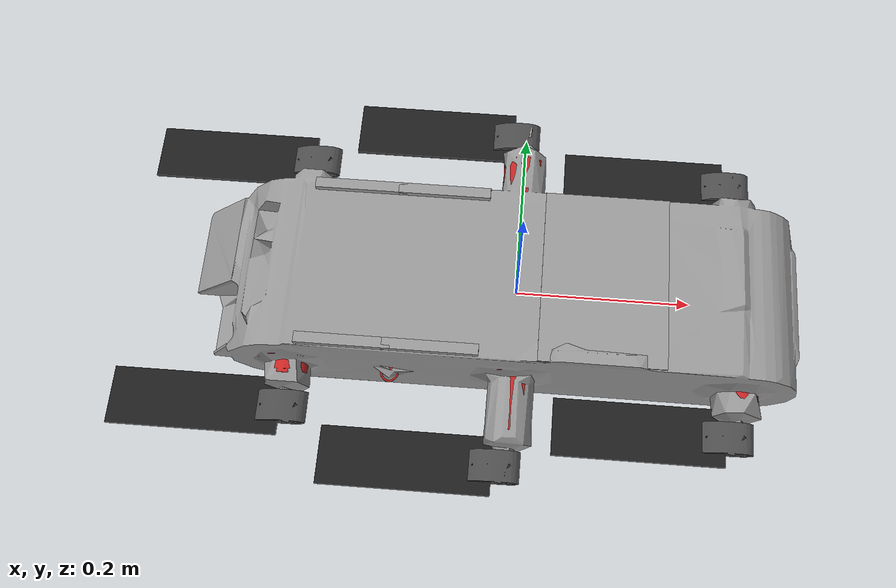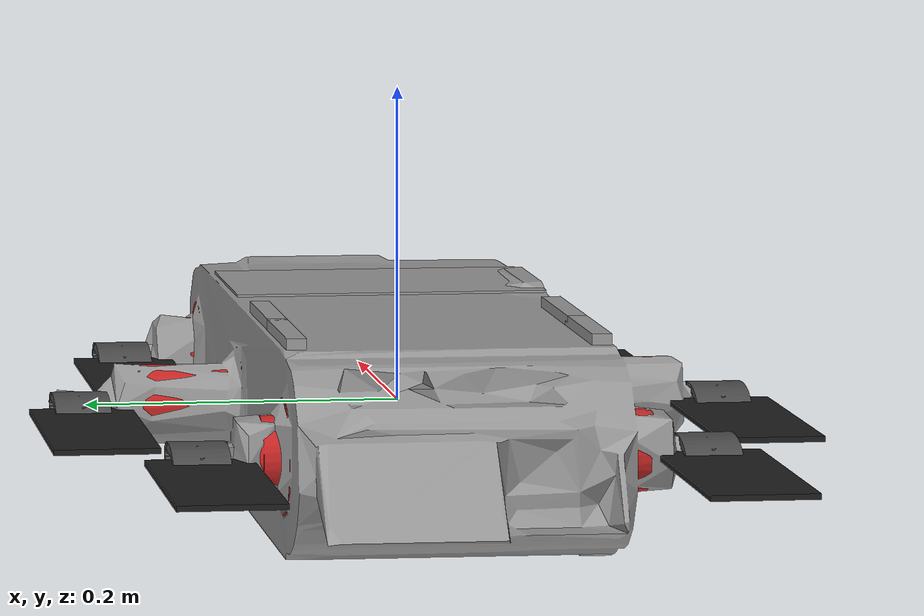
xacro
<?xml version="1.0"?>

<robot xmlns:xacro="http://www.ros.org/wiki/xacro" name="aqua">
    <xacro:include filename="$(find aqua_description)/urdf/materials.urdf.xacro" />

    <!-- ========= BEGIN CONSTANT DEFINITIONS =========== -->

    <xacro:property name="M_PI" value="3.1415926535897931" />

    <xacro:property name="shell_size_x" value="0.64" />
    <xacro:property name="shell_size_y" value="0.21" />
    <xacro:property name="shell_size_z" value="0.125" />

    <xacro:property name="leg_size_x" value="0.192" />
    <xacro:property name="leg_size_y" value="0.065" />
    <xacro:property name="leg_size_z" value="0.0035" />

    <xacro:property name="hip_radius" value="0.029" />
    <xacro:property name="hip_length" value="0.032" />
    <xacro:property name="mid_hip_length" value="0.082"/>

    <xacro:property name="shoulder_size_x" value="0.06" />
    <xacro:property name="shoulder_size_y" value="0.035" />
    <xacro:property name="shoulder_size_z" value="0.02" />

    <xacro:property name="shell_mass" value="14.405"/> <!-- total is 16.4 -->
    <xacro:property name="leg_mass" value="0.120"/>
    <xacro:property name="shoulder_mass" value="0.045"/>
    <xacro:property name="zinc_density" value="7000.0"/> <!-- from approximate measurements from physical zinc weights used on aqua-->
    <xacro:property name="steel_density" value="8000.0"/> <!-- approximate measurements from physical ballast plates -->

    <!-- ========= BEGIN MACRO DEFINITIONS =========== -->
    <!-- LEGS -->
    <xacro:macro name="leg" params="name">
        <link name="${name}_leg">
            <visual>
                <origin xyz="0 0 0" rpy="0 0 0" />
                <geometry name="leg_visual_geom">
                    <box size="${leg_size_x} ${leg_size_y} ${leg_size_z}" />
                </geometry>
            </visual>
            <collision>
                <origin xyz="0 0 0" rpy="0 0 0" />
                <geometry>
                    <!--box size="${leg_size_x} ${leg_size_y} ${leg_size_z}" /-->
                    <mesh filename="package://aqua_description/meshes/unit_box.stl" scale="${leg_size_x} ${leg_size_y} ${leg_size_z}"/>
                </geometry>
            </collision>
            <inertial>
                <origin xyz="0 0 0" rpy="0 0 0" />
                <mass value="${leg_mass}"/>
                <inertia ixx="${leg_mass*(leg_size_y*leg_size_y + leg_size_z*leg_size_z)/12}" ixy="0.00" ixz="0.00" iyy="${leg_mass*(leg_size_x*leg_size_x + leg_size_z*leg_size_z)/12}" iyz="0.00" izz="${leg_mass*(leg_size_x*leg_size_x + leg_size_y*leg_size_y)/12}"/>
            </inertial>
        </link>
    </xacro:macro>

    <!-- SHOULDERS -->
    <xacro:macro name="shoulder" params="name">
        <link name="${name}_shoulder">
            <visual>
                <origin xyz="0 0 0" rpy="0 0 0" />
                <geometry name="shoulder_visual_geom">
                    <mesh filename="package://aqua_description/meshes/shoulder.stl" scale="1.0 1.0 1.0" />
                </geometry>
            </visual>
            <collision>
                <origin xyz="0 0 0" rpy="0 0 0" />
                <geometry>
                    <!--box size="${shoulder_size_x} ${shoulder_size_y} ${shoulder_size_z}" /-->
                    <!--mesh filename="package://aqua_description/meshes/leg_joint.STL" scale="1.0 1.0 1.0" /-->
                    <mesh filename="package://aqua_description/meshes/shoulder_collision.stl" scale="1.0 1.0 1.0" />
                </geometry>
            </collision>
            <inertial>
                <origin xyz="0 0 0" rpy="0 0 0" />
                <mass value="${shoulder_mass}"/>
                <inertia ixx="${shoulder_mass*(shoulder_size_y*shoulder_size_y + shoulder_size_z*shoulder_size_z)/12}" ixy="0.00" ixz="0.00" iyy="${shoulder_mass*(shoulder_size_x*shoulder_size_x + shoulder_size_z*shoulder_size_z)/12}" iyz="0.00" izz="${shoulder_mass*(shoulder_size_x*shoulder_size_x + shoulder_size_y*shoulder_size_y)/12}"/>
            </inertial>
        </link>
    </xacro:macro>

    <!-- BALLASTING -->
    <xacro:macro name="rectangular_ballast_weight" params="name xyz rpy density length width height">
        <link name="${name}_ballast">
            <visual>
                <origin xyz="0 0 0" rpy="0 0 0" />
                <geometry>
                    <box size="${length} ${width} ${height}" />
                </geometry>
            </visual>
            <collision>
                <origin xyz="0 0 0" rpy="0 0 0" />
                <geometry>
                    <box size="${length} ${width} ${height}"/>
                </geometry>
            </collision>
            <inertial>
                <origin xyz="0 0 0" rpy="0 0 0" />
                <mass value="${density*length*width*height}"/>
                <inertia ixx="${(density*length*width*height)*(width*width + height*height)/12}" ixy="0.00" ixz="0.00" iyy="${(density*length*width*height)*(length*length + height*height)/12}" iyz="0.00" izz="${(density*length*width*height)*(length*length + width*width)/12}"/>
            </inertial>
        </link>
        <joint name="${name}_ballast_joint" type="revolute">
            <limit upper="0.0" lower="0.0" effort="0.0" velocity="0.0"/>
            <origin xyz="${xyz}" rpy="${rpy}" />
            <axis xyz="0 1 0" />
            <parent link="aqua_base"/>
            <child link="${name}_ballast"/>
        </joint>
        <gazebo reference="${name}_ballast">
            <selfCollide>false</selfCollide>
            <material>Gazebo/Grey</material>
        </gazebo>
    </xacro:macro>

    <!-- SHOULDER JOINTS -->
    <xacro:macro name="shoulder_joint" params="name xyz rpy axis">
        <joint name="${name}_shoulder_joint" type="continuous">
            <origin xyz="${xyz}" rpy="${rpy}" />
            <dynamics damping="0.1" friction="0.1"/>
            <axis xyz="${axis}" />
            <parent link="aqua_shell"/>
            <child link="${name}_shoulder"/>
        </joint>
    </xacro:macro>

    <!-- LEG JOINTS -->
    <xacro:macro name="leg_joint" params="name">
        <joint name="${name}_leg_joint" type="revolute">
            <limit upper="0.0" lower="0.0" effort="0.0" velocity="0.0"/>
            <dynamics damping="1.0" friction="1.0"/>
            <origin xyz="-${0.008 + leg_size_x/2} 0 -${leg_size_z/2}" rpy="0 0 0" />
            <axis xyz="0 1 0" />
            <parent link="${name}_shoulder"/>
            <child link="${name}_leg"/>
        </joint>
    </xacro:macro>

  <!-- GAZEBO MACROS -->
  <xacro:macro name="leg_gazebo" params="name">
      <gazebo reference="${name}_leg">
          <selfCollide>false</selfCollide>
          <material>Gazebo/Black</material>
      </gazebo>
      <gazebo reference="${name}_leg_joint">
          <implicitSpringDamper>true</implicitSpringDamper>
      </gazebo>
  </xacro:macro>

  <xacro:macro name="shoulder_gazebo" params="name">
      <gazebo reference="${name}_shoulder">
          <selfCollide>false</selfCollide>
          <material>Gazebo/DarkGrey</material>
      </gazebo>
  </xacro:macro>

  <!-- ========= BEGIN LINK DEFINITIONS =========== -->

  <link name="aqua_base">
  </link>

  <!-- The parent link is the robots shell, silver and red in the same position -->
  <link name="aqua_shell">
      <visual>
          <origin xyz="0 0 0" rpy="0 0 0" />
          <geometry>
              <mesh filename="package://aqua_description/meshes/aqua_silver_m_low_res.STL" scale="1.0 1.0 1.0" />
          </geometry>
      </visual>
      <collision>
          <geometry>
              <!-- the scale is corrected by a little bit to account for the over estimation of the volume in the model (it has some ballasting plates) -->
              <mesh filename="package://aqua_description/meshes/aqua_body_collision_1000_2.stl" scale="1.0 1.0 0.975" />
          </geometry>
      </collision>
      <inertial>
          <!--- this center of mass was obtained from meshlab, so probably slighltly wrong -->
          <origin xyz="-0.0082217 -0.0011512 -0.0052371" rpy="0 0 0" />
          <!-- the mass was measured on ramius (aqua4) with the batteries inside -->
          <mass value="${shell_mass}"/>
          <inertia ixx="${0.06762729295778704963}" ixy="${-0.00743579109825349537}" ixz="${-0.0017041777467544214}" iyy="${0.27789624395031214954}" iyz="${-0.00069697735739706918}" izz="${0.31521251562952778968}"/>
      </inertial>
  </link>

  <link name="aqua_shell_viz">
      <visual>
          <origin xyz="0 0 0" rpy="0 0 0" />
          <geometry>
              <mesh filename="package://aqua_description/meshes/aqua_red_m_low_res.STL" scale="1.0 1.0 1.0" />
          </geometry>
      </visual>
      <inertial>
          <origin xyz="-0.0082217 -0.0011512 -0.0052371" rpy="0 0 0" />
          <mass value="1e-10"/>
          <inertia ixx="1e-10" ixy="0" ixz="0" iyy="1e-10" iyz="0" izz="1e-10"/>
      </inertial>
  </link>

  <!-- CAMERA LINKS -->

  <link name="camera_front_left">
      <visual>
          <origin xyz="0 0 0" rpy="0 0 0" />
          <geometry name="camera_front_left_visual_geom">
              <box size="0.0001 0.00025 0.00025" />
          </geometry>
      </visual>
  </link>

  <link name="camera_front_right">
      <visual>
          <origin xyz="0 0 0" rpy="0 0 0" />
          <geometry name="camera_front_right_visual_geom">
              <box size="0.0001 0.00025 0.00025" />
          </geometry>
      </visual>
  </link>

  <link name="camera_front_right_down">
      <visual>
          <origin xyz="0 0 0" rpy="0 0 0" />
          <geometry name="camera_front_right_down_visual_geom">
              <box size="0.0001 0.00025 0.00025" />
          </geometry>
      </visual>
  </link>
  <!-- BALLASTING LINKS -->

  <xacro:rectangular_ballast_weight name="ballast_plate_1"
                                    density="${steel_density}"
                                    xyz="${0.15*shell_size_x} ${0} ${(shell_size_z/2.0+0.00275)}"
                                    rpy="0 0 0"
                                    length="0.14"
                                    width="0.2"
                                    height="0.0015"/>

  <xacro:rectangular_ballast_weight name="ballast_plate_2"
                                    density="${steel_density}"
                                    xyz="${0.16*shell_size_x} ${0} ${-(shell_size_z/2.0+0.00275)}"
                                    rpy="0 0 0"
                                    length="0.25"
                                    width="0.2"
                                    height="0.0015"/>

  <xacro:rectangular_ballast_weight name="ballast_weight_1"
                                    density="${zinc_density}"
                                    xyz="${-0.3*shell_size_x} ${-0.5*shell_size_y+0.015} ${-(shell_size_z/2.0+0.002)}"
                                    rpy="0 0 0"
                                    length="0.09"
                                    width="0.02"
                                    height="0.004"/>

  <xacro:rectangular_ballast_weight name="ballast_weight_2"
                                    density="${zinc_density}"
                                    xyz="${-0.29*shell_size_x} ${-0.5*shell_size_y+0.012} ${(shell_size_z/2.0+0.00325)}"
                                    rpy="0 0 0"
                                    length="0.105"
                                    width="0.01221"
                                    height="0.007"/>

  <xacro:rectangular_ballast_weight name="ballast_weight_3"
                                    density="${zinc_density}"
                                    xyz="${-0.09} ${-0.5*shell_size_y+0.012} ${(shell_size_z/2.0+0.00325)}"
                                    rpy="0 0 0"
                                    length="0.105"
                                    width="0.01221"
                                    height="0.007"/>

  <xacro:rectangular_ballast_weight name="ballast_weight_4"
                                    density="${zinc_density}"
                                    xyz="${-0.09} ${0.5*shell_size_y-0.012} ${(shell_size_z/2.0+0.00325)}"
                                    rpy="0 0 0"
                                    length="0.105"
                                    width="0.01221"
                                    height="0.007"/>

  <xacro:rectangular_ballast_weight name="ballast_weight_5"
                                    density="${zinc_density}"
                                    xyz="${-0.29*shell_size_x} ${0.5*shell_size_y-0.012} ${(shell_size_z/2.0+0.00325)}"
                                    rpy="0 0 0"
                                    length="0.105"
                                    width="0.01221"
                                    height="0.007"/>

  <xacro:rectangular_ballast_weight name="ballast_weight_6"
                                    density="${zinc_density}"
                                    xyz="${-0.065} ${0.01} ${-(shell_size_z/2.0+0.006)}"
                                    rpy="0 0 0"
                                    length="0.015"
                                    width="0.15"
                                    height="0.012"/>

  <!-- DEPTH SENSOR LINK -->
  <link name="depth_sensor">
    <visual>
        <origin xyz="0 0 0" rpy="0 0 0" />
        <geometry name="depth_sensor_visual_geom">
            <box size="0.001 0.001 0.001" />
        </geometry>
    </visual>
    <inertial>
        <origin xyz="0 0 0" rpy="0 0 0" />
        <!-- these are dummy values, otherwise gazebo will ignore this link -->
        <mass value="1e-4"/>
        <inertia ixx="1.0e-4" ixy="0.00" ixz="0.00" iyy="1.0e-4" iyz="0.00" izz="1.0e-4"/>
    </inertial>
  </link>

  <!-- FRONT LEFT LINKS -->

  <xacro:leg name="left_front"/>

  <xacro:shoulder name="left_front"/>

  <!-- MID LEFT LINKS -->

  <xacro:leg name="left_mid"/>

  <xacro:shoulder name="left_mid"/>

  <!-- REAR LEFT LINKS -->

  <xacro:leg name="left_rear"/>

  <xacro:shoulder name="left_rear"/>

  <!-- FRONT RIGHT LINKS -->

  <xacro:leg name="right_front"/>

  <xacro:shoulder name="right_front"/>

  <!-- MID RIGHT LINKS -->

  <xacro:leg name="right_mid"/>

  <xacro:shoulder name="right_mid"/>

  <!-- REAR RIGHT LINKS -->

  <xacro:leg name="right_rear"/>

  <xacro:shoulder name="right_rear"/>

  <!-- ========= BEGIN JOINT DEFINITIONS =========== -->

  <!-- BASE JOINT -->

  <joint name="base_joint_shell" type="fixed">
      <origin xyz="0 0 0" rpy="0 0 0" />
      <axis xyz="0 1 0" />
      <parent link="aqua_base"/>
      <child link="aqua_shell"/>
  </joint>

  <joint name="shell_viz_joint" type="fixed">
      <origin xyz="0 0 0" rpy="0 0 0" />
      <axis xyz="0 1 0" />
      <parent link="aqua_shell"/>
      <child link="aqua_shell_viz"/>
  </joint>

  <!-- CAMERA JOINTS -->

  <joint name="front_left_camera_joint" type="fixed">
      <origin xyz="${shell_size_x/2} ${shell_size_y/3} 0" rpy="${M_PI/2} ${M_PI} ${M_PI/2}" />
      <axis xyz="0 1 0" />
      <parent link="aqua_shell"/>
      <child link="camera_front_left"/>
  </joint>

  <joint name="front_right_camera_joint" type="fixed">
      <origin xyz="${3*shell_size_x/5} -${shell_size_y/3} 0" rpy="${M_PI/2} ${M_PI} ${M_PI/2}" />
      <axis xyz="0 1 0" />
      <parent link="aqua_shell"/>
      <child link="camera_front_right"/>
  </joint>

  <joint name="front_right_camera_down_joint" type="fixed">
      <origin xyz="0 0 0" rpy="0 0 ${M_PI/2}" />
      <axis xyz="0 1 0" />
      <parent link="camera_front_right"/>
      <child link="camera_front_right_down"/>
  </joint>

  <!-- FRONT LEFT JOINTS -->
  <xacro:leg_joint name="left_front" />

  <xacro:shoulder_joint name="left_front" xyz="${shell_size_x/2 - 0.10*shell_size_x - 0.007} ${shell_size_y/2 + hip_length + shoulder_size_y/2} 0" rpy="0 0 0" axis="0 -1 0"/>

  <!-- MID LEFT JOINTS -->
  <xacro:leg_joint name="left_mid" />

  <xacro:shoulder_joint name="left_mid" xyz="-0.007 ${shell_size_y/2 + mid_hip_length + shoulder_size_y/2} 0" rpy="0 0 0" axis="0 -1 0" />

  <!-- REAR LEFT JOINTS -->
  <xacro:leg_joint name="left_rear"/>

  <xacro:shoulder_joint name="left_rear" xyz="-${shell_size_x/2 - 0.10*shell_size_x - 0.007} ${shell_size_y/2 + hip_length + shoulder_size_y/2} 0" rpy="0 0 0" axis="0 -1 0" />

  <!-- FRONT RIGHT JOINTS -->
  <xacro:leg_joint name="right_front"/>

  <xacro:shoulder_joint name="right_front" xyz="${shell_size_x/2 - 0.10*shell_size_x - 0.007} -${shell_size_y/2 + hip_length + shoulder_size_y/2} 0" rpy="0 0 0" axis="0 -1 0" />

  <!-- MID RIGHT JOINTS -->
  <xacro:leg_joint name="right_mid"/>

  <xacro:shoulder_joint name="right_mid" xyz="-0.007 -${shell_size_y/2 + mid_hip_length + shoulder_size_y/2} 0" rpy="0 0 0" axis="0 -1 0"  />

  <!-- REAR RIGHT JOINTS -->
  <xacro:leg_joint name="right_rear"/>

  <xacro:shoulder_joint name="right_rear" xyz="-${shell_size_x/2 - 0.10*shell_size_x - 0.007} -${shell_size_y/2 + hip_length + shoulder_size_y/2} 0" rpy="0 0 0" axis="0 -1 0"  />

  <!-- DEPTH SENSOR JOINT -->
  <!-- making this joint revolute instead of fixed is a hack, so that is appears in the gazebo simulation -->
  <joint name="depth_sensor_joint" type="revolute">
      <limit upper="0.0" lower="0.0" effort="0" velocity="0"/>
      <origin xyz="${shell_size_x/2} 0 0" rpy="0 0 0" />
      <axis xyz="0 1 0" />
      <parent link="aqua_base"/>
      <child link="depth_sensor"/>
  </joint>

  <!-- GAZEBO SPECIFIC SETTINGS -->
  <!-- gazebo materials -->
  <gazebo reference="aqua_shell">
      <selfCollide>false</selfCollide>
      <material>Gazebo/Grey</material>
  </gazebo>
  <gazebo reference="aqua_shell_viz">
      <selfCollide>false</selfCollide>
      <material>Gazebo/Red</material>
  </gazebo>
  <gazebo reference="aqua_base">
      <selfCollide>false</selfCollide>
  </gazebo>
  <xacro:leg_gazebo name="left_front" />
  <xacro:shoulder_gazebo name="left_front" />
  <xacro:leg_gazebo name="left_mid" />
  <xacro:shoulder_gazebo name="left_mid" />
  <xacro:leg_gazebo name="left_rear" />
  <xacro:shoulder_gazebo name="left_rear" />
  <xacro:leg_gazebo name="right_front" />
  <xacro:shoulder_gazebo name="right_front" />
  <xacro:leg_gazebo name="right_mid" />
  <xacro:shoulder_gazebo name="right_mid" />
  <xacro:leg_gazebo name="right_rear" />
  <xacro:shoulder_gazebo name="right_rear" />
  <gazebo reference="depth_sensor">
      <selfCollide>false</selfCollide>
      <material>Gazebo/Grey</material>
  </gazebo>

</robot>
